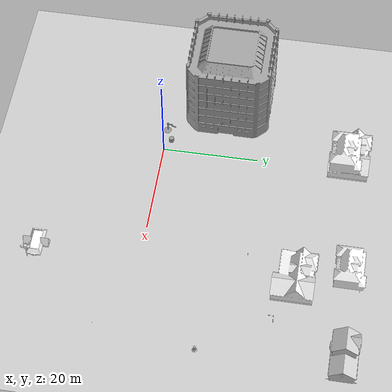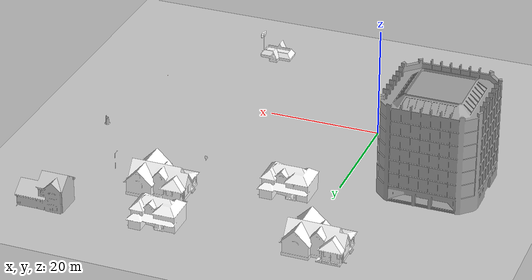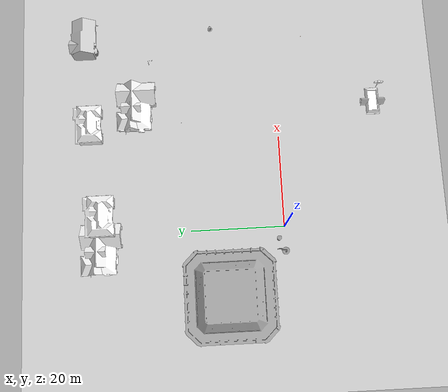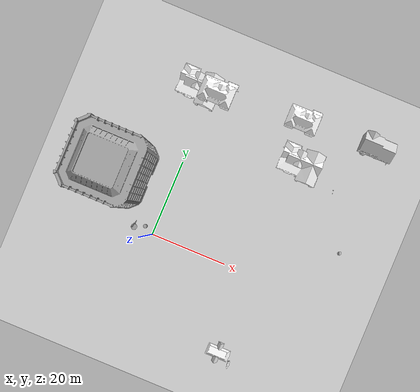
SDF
<sdf version="1.6">
 <world name="default">
  <light name="sun" type="directional">
   <pose>0 0 10 0 -0 0</pose>
   <diffuse>0.8 0.8 0.8 1</diffuse>
   <specular>0.1 0.1 0.1 1</specular>
   <attenuation>
    <range>1000</range>
    <constant>0.9</constant>
    <linear>0.01</linear>
    <quadratic>0.001</quadratic>
   </attenuation>
   <direction>-0.5 0.5 -1</direction>
  </light>
  <model name="ground_plane">
   <static>1</static>
   <link name="link">
    <collision name="collision">
     <geometry><plane><normal>0 0 1</normal><size>100 100</size></plane></geometry>
     <surface><friction><ode><mu>100</mu><mu2>50</mu2></ode></friction></surface>
    </collision>
    <visual name="visual">
     <cast_shadows>0</cast_shadows>
     <geometry><plane><normal>0 0 1</normal><size>100 100</size></plane></geometry>
     <material>
      <script><uri>file://media/materials/scripts/gazebo.material</uri><name>Gazebo/Grey</name></script>
     </material>
    </visual>
   </link>
  </model>
  <gravity>0 0 -9.8</gravity>
  <magnetic_field>6e-06 2.3e-05 -4.2e-05</magnetic_field>
  <atmosphere type="adiabatic"/>
  <physics name="default_physics" default="0" type="ode">
   <max_step_size>0.001</max_step_size>
   <real_time_factor>1</real_time_factor>
   <real_time_update_rate>1000</real_time_update_rate>
  </physics>
  <scene><ambient>0.4 0.4 0.4 1</ambient><background>0.7 0.7 0.7 1</background><shadows>1</shadows></scene>
  <spherical_coordinates>
   <surface_model>EARTH_WGS84</surface_model>
   <latitude_deg>0</latitude_deg>
   <longitude_deg>0</longitude_deg>
   <elevation>0</elevation>
   <heading_deg>0</heading_deg>
  </spherical_coordinates>
  <model name="unit_cylinder_0">
   <pose>-2.44814 1.27814 0.499994 -4e-06 -3e-06 -0</pose>
   <link name="link">
    <inertial>
     <mass>1</mass>
     <inertia><ixx>0.145833</ixx><ixy>0</ixy><ixz>0</ixz><iyy>0.145833</iyy><iyz>0</iyz><izz>0.125</izz></inertia>
    </inertial>
    <collision name="collision">
     <geometry><cylinder><radius>0.5</radius><length>1</length></cylinder></geometry>
    </collision>
    <visual name="visual">
     <geometry><cylinder><radius>0.5</radius><length>1</length></cylinder></geometry>
     <material>
      <script><name>Gazebo/Grey</name><uri>file://media/materials/scripts/gazebo.material</uri></script>
     </material>
    </visual>
   </link>
  </model>
  <model name="double_pendulum_with_base">
   <link name="base">
    <inertial>
     <mass>100</mass>
     <inertia><ixx>1</ixx><ixy>0</ixy><ixz>0</ixz><iyy>1</iyy><iyz>0</iyz><izz>1</izz></inertia>
    </inertial>
    <visual name="vis_plate_on_ground">
     <pose>0 0 0.01 0 -0 0</pose>
     <geometry><cylinder><radius>0.8</radius><length>0.02</length></cylinder></geometry>
     <material>
      <script><uri>file://media/materials/scripts/gazebo.material</uri><name>Gazebo/Grey</name></script>
     </material>
    </visual>
    <visual name="vis_pole">
     <pose>-0.275 0 1.1 0 -0 0</pose>
     <geometry><box><size>0.2 0.2 2.2</size></box></geometry>
     <material>
      <script><uri>file://media/materials/scripts/gazebo.material</uri><name>Gazebo/Grey</name></script>
     </material>
    </visual>
    <collision name="col_plate_on_ground">
     <pose>0 0 0.01 0 -0 0</pose>
     <geometry><cylinder><radius>0.8</radius><length>0.02</length></cylinder></geometry>
    </collision>
    <collision name="col_pole">
     <pose>-0.275 0 1.1 0 -0 0</pose>
     <geometry><box><size>0.2 0.2 2.2</size></box></geometry>
    </collision>
   </link>
   <link name="upper_link">
    <pose>0 0 2.1 -1.5708 0 0</pose>
    <inertial>
     <pose>0 0 0.5 0 -0 0</pose>
     <inertia><ixx>1</ixx><ixy>0</ixy><ixz>0</ixz><iyy>1</iyy><iyz>0</iyz><izz>1</izz></inertia>
     <mass>1</mass>
    </inertial>
    <visual name="vis_upper_joint">
     <pose>-0.05 0 0 3.14159 1.57079 3.14159</pose>
     <geometry><cylinder><radius>0.1</radius><length>0.3</length></cylinder></geometry>
     <material>
      <script><uri>file://media/materials/scripts/gazebo.material</uri><name>Gazebo/Grey</name></script>
     </material>
    </visual>
    <visual name="vis_lower_joint">
     <pose>0 0 1 3.14159 1.57079 3.14159</pose>
     <geometry><cylinder><radius>0.1</radius><length>0.2</length></cylinder></geometry>
     <material>
      <script><uri>file://media/materials/scripts/gazebo.material</uri><name>Gazebo/Grey</name></script>
     </material>
    </visual>
    <visual name="vis_cylinder">
     <pose>0 0 0.5 0 -0 0</pose>
     <geometry><cylinder><radius>0.1</radius><length>0.9</length></cylinder></geometry>
     <material>
      <script><uri>file://media/materials/scripts/gazebo.material</uri><name>Gazebo/Grey</name></script>
     </material>
    </visual>
    <collision name="col_upper_joint">
     <pose>-0.05 0 0 3.14159 1.57079 3.14159</pose>
     <geometry><cylinder><radius>0.1</radius><length>0.3</length></cylinder></geometry>
    </collision>
    <collision name="col_lower_joint">
     <pose>0 0 1 3.14159 1.57079 3.14159</pose>
     <geometry><cylinder><radius>0.1</radius><length>0.2</length></cylinder></geometry>
    </collision>
    <collision name="col_cylinder">
     <pose>0 0 0.5 0 -0 0</pose>
     <geometry><cylinder><radius>0.1</radius><length>0.9</length></cylinder></geometry>
    </collision>
   </link>
   <link name="lower_link">
    <pose>0.25 1 2.1 -2 0 0</pose>
    <inertial>
     <pose>0 0 0.5 0 -0 0</pose>
     <inertia><ixx>1</ixx><ixy>0</ixy><ixz>0</ixz><iyy>1</iyy><iyz>0</iyz><izz>1</izz></inertia>
     <mass>1</mass>
    </inertial>
    <visual name="vis_lower_joint">
     <pose>0 0 0 3.14159 1.57079 3.14159</pose>
     <geometry><cylinder><radius>0.08</radius><length>0.3</length></cylinder></geometry>
     <material>
      <script><uri>file://media/materials/scripts/gazebo.material</uri><name>Gazebo/Grey</name></script>
     </material>
    </visual>
    <visual name="vis_cylinder">
     <pose>0 0 0.5 0 -0 0</pose>
     <geometry><cylinder><radius>0.1</radius><length>0.9</length></cylinder></geometry>
     <material>
      <script><uri>file://media/materials/scripts/gazebo.material</uri><name>Gazebo/Grey</name></script>
     </material>
    </visual>
    <collision name="col_lower_joint">
     <pose>0 0 0 3.14159 1.57079 3.14159</pose>
     <geometry><cylinder><radius>0.08</radius><length>0.3</length></cylinder></geometry>
    </collision>
    <collision name="col_cylinder">
     <pose>0 0 0.5 0 -0 0</pose>
     <geometry><cylinder><radius>0.1</radius><length>0.9</length></cylinder></geometry>
    </collision>
   </link>
   <joint name="upper_joint" type="revolute">
    <parent>base</parent>
    <child>upper_link</child>
    <axis>
     <xyz>1 0 0</xyz>
     <use_parent_model_frame>1</use_parent_model_frame>
     <limit><lower>-1e+16</lower><upper>1e+16</upper></limit>
     <dynamics><spring_reference>0</spring_reference><spring_stiffness>0</spring_stiffness></dynamics>
    </axis>
   </joint>
   <joint name="lower_joint" type="revolute">
    <parent>upper_link</parent>
    <child>lower_link</child>
    <axis>
     <xyz>1 0 0</xyz>
     <use_parent_model_frame>1</use_parent_model_frame>
     <limit><lower>-1e+16</lower><upper>1e+16</upper></limit>
     <dynamics><spring_reference>0</spring_reference><spring_stiffness>0</spring_stiffness></dynamics>
    </axis>
   </joint>
   <pose>-5.16713 0.000517 -1e-06 -0 5e-06 -0.021644</pose>
  </model>
  <model name="Office Building">
   <static>1</static>
   <link name="link">
    <collision name="collision">
     <geometry>
      <mesh><uri>model://office_building/meshes/office_building.dae</uri><scale>1 1 1</scale></mesh>
     </geometry>
    </collision>
    <visual name="visual">
     <geometry>
      <mesh><uri>model://office_building/meshes/office_building.dae</uri><scale>1 1 1</scale></mesh>
     </geometry>
    </visual>
   </link>
   <pose>-14.6802 12.3677 0 0 -0 0</pose>
  </model>
  <model name="Construction Barrel">
   <static>1</static>
   <link name="link">
    <inertial>
     <pose>0 0 0.4 0 -0 0</pose>
     <mass>500</mass>
     <inertia><ixx>51.2096</ixx><iyy>51.2096</iyy><izz>25</izz><ixy>0</ixy><ixz>0</ixz><iyz>0</iyz></inertia>
    </inertial>
    <collision name="collision">
     <geometry>
      <mesh><uri>model://construction_barrel/meshes/construction_barrel.dae</uri><scale>1 1 1</scale></mesh>
     </geometry>
    </collision>
    <visual name="visual">
     <geometry>
      <mesh><uri>model://construction_barrel/meshes/construction_barrel.dae</uri><scale>1 1 1</scale></mesh>
     </geometry>
    </visual>
   </link>
   <pose>46.0084 13.9161 0 0 -0 0</pose>
  </model>
  <model name="Fast Food">
   <static>1</static>
   <link name="link">
    <collision name="collision">
     <geometry><mesh><uri>model://fast_food/meshes/fast_food.dae</uri><scale>1 1 1</scale></mesh></geometry>
    </collision>
    <visual name="visual">
     <geometry><mesh><uri>model://fast_food/meshes/fast_food.dae</uri><scale>1 1 1</scale></mesh></geometry>
     <material>
      <script>
       <uri>model://fast_food/materials/scripts</uri>
       <uri>model://fast_food/materials/textures</uri>
       <name>FastFood/Diffuse</name>
      </script>
     </material>
    </visual>
   </link>
   <pose>26.9774 -21.2928 0 0 -0 0</pose>
  </model>
  <model name="House 1">
   <static>1</static>
   <link name="link">
    <collision name="collision">
     <geometry><mesh><uri>model://house_1/meshes/house_1.dae</uri><scale>1 1 1</scale></mesh></geometry>
    </collision>
    <visual name="visual">
     <geometry><mesh><uri>model://house_1/meshes/house_1.dae</uri><scale>1 1 1</scale></mesh></geometry>
     <material>
      <script>
       <uri>model://house_1/materials/scripts</uri>
       <uri>model://house_1/materials/textures</uri>
       <name>House_1/Diffuse</name>
      </script>
      <shader type="normal_map_object_space"><normal_map>House_1_Normal.png</normal_map></shader>
     </material>
    </visual>
   </link>
   <pose>-3.01218 39.3259 0 0 -0 0</pose>
  </model>
  <model name="House 2">
   <static>1</static>
   <link name="link">
    <collision name="collision">
     <geometry><mesh><uri>model://house_2/meshes/house_2.dae</uri><scale>1 1 1</scale></mesh></geometry>
    </collision>
    <visual name="visual">
     <geometry><mesh><uri>model://house_2/meshes/house_2.dae</uri><scale>1 1 1</scale></mesh></geometry>
     <material>
      <script>
       <uri>model://house_2/materials/scripts</uri>
       <uri>model://house_2/materials/textures</uri>
       <name>House_2/Diffuse</name>
      </script>
     </material>
    </visual>
   </link>
   <pose>23.5473 41.1785 0 0 -0 0</pose>
  </model>
  <model name="House 3">
   <static>1</static>
   <link name="link">
    <collision name="collision">
     <geometry><mesh><uri>model://house_3/meshes/house_3.dae</uri><scale>1 1 1</scale></mesh></geometry>
    </collision>
    <visual name="visual">
     <geometry><mesh><uri>model://house_3/meshes/house_3.dae</uri><scale>1 1 1</scale></mesh></geometry>
     <material>
      <script>
       <uri>model://house_3/materials/scripts</uri>
       <uri>model://house_3/materials/textures</uri>
       <name>House_3/Diffuse</name>
      </script>
     </material>
    </visual>
   </link>
   <pose>44.5679 42.2201 0 0 -0 0</pose>
  </model>
  <model name="House 1_0">
   <static>1</static>
   <link name="link">
    <collision name="collision">
     <geometry><mesh><uri>model://house_1/meshes/house_1.dae</uri><scale>1 1 1</scale></mesh></geometry>
    </collision>
    <visual name="visual">
     <geometry><mesh><uri>model://house_1/meshes/house_1.dae</uri><scale>1 1 1</scale></mesh></geometry>
     <material>
      <script>
       <uri>model://house_1/materials/scripts</uri>
       <uri>model://house_1/materials/textures</uri>
       <name>House_1/Diffuse</name>
      </script>
      <shader type="normal_map_object_space"><normal_map>House_1_Normal.png</normal_map></shader>
     </material>
    </visual>
   </link>
   <pose>27.9961 31.1768 0 0 -0 0</pose>
  </model>
  <model name="Lamp Post">
   <static>1</static>
   <link name="link">
    <collision name="collision">
     <geometry><mesh><uri>model://lamp_post/meshes/lamp_post.dae</uri><scale>1 1 1</scale></mesh></geometry>
    </collision>
    <visual name="visual">
     <geometry><mesh><uri>model://lamp_post/meshes/lamp_post.dae</uri><scale>1 1 1</scale></mesh></geometry>
    </visual>
   </link>
   <pose>38.0071 27.9592 0 0 -0 0</pose>
  </model>
  <model name="wood_cube_7_5cm">
   <link name="link">
    <pose>0 0 0.0375 0 -0 0</pose>
    <inertial>
     <mass>0.2249</mass>
     <inertia>
      <ixx>0.000210844</ixx>
      <ixy>0</ixy>
      <ixz>0</ixz>
      <iyy>0.000210844</iyy>
      <iyz>0</iyz>
      <izz>0.000210844</izz>
     </inertia>
    </inertial>
    <collision name="collision">
     <geometry><box><size>0.075 0.075 0.075</size></box></geometry>
     <surface>
      <contact>
       <poissons_ratio>0.347</poissons_ratio>
       <elastic_modulus>8.8e+09</elastic_modulus>
       <ode><kp>100000</kp><kd>100</kd><max_vel>100</max_vel><min_depth>0.001</min_depth></ode>
      </contact>
      <friction>
       <torsional>
        <coefficient>1</coefficient>
        <use_patch_radius>0</use_patch_radius>
        <surface_radius>0.01</surface_radius>
       </torsional>
      </friction>
     </surface>
    </collision>
    <visual name="visual">
     <geometry><box><size>0.075 0.075 0.075</size></box></geometry>
     <material>
      <script><uri>file://media/materials/scripts/gazebo.material</uri><name>Gazebo/Wood</name></script>
     </material>
    </visual>
   </link>
   <pose>43.2062 -6.58881 -0.001005 0 -0 0</pose>
  </model>
  <light name="sun_0" type="directional">
   <pose>37.4498 5.86909 10 0 -0 0</pose>
   <diffuse>0.8 0.8 0.8 1</diffuse>
   <specular>0.1 0.1 0.1 1</specular>
   <attenuation>
    <range>1000</range>
    <constant>0.9</constant>
    <linear>0.01</linear>
    <quadratic>0.001</quadratic>
   </attenuation>
   <direction>-0.5 0.5 -1</direction>
  </light>
  <model name="Stop Sign">
   <link name="link">
    <collision name="collision">
     <geometry><mesh><uri>model://stop_sign/meshes/stop_sign.dae</uri><scale>1 1 1</scale></mesh></geometry>
    </collision>
    <visual name="visual">
     <geometry><mesh><uri>model://stop_sign/meshes/stop_sign.dae</uri><scale>1 1 1</scale></mesh></geometry>
     <material>
      <script>
       <uri>model://stop_sign/materials/scripts</uri>
       <uri>model://stop_sign/materials/textures</uri>
       <name>StopSign/Diffuse</name>
      </script>
     </material>
    </visual>
    <inertial>
     <inertia><ixx>1</ixx><ixy>0</ixy><ixz>0</ixz><iyy>1</iyy><iyz>0</iyz><izz>1</izz></inertia>
     <mass>1</mass>
    </inertial>
   </link>
   <pose>23.9915 21.1931 1e-06 6.6e-05 1.7e-05 -0</pose>
  </model>
  <model name="House 2_0">
   <static>1</static>
   <link name="link">
    <collision name="collision">
     <geometry><mesh><uri>model://house_2/meshes/house_2.dae</uri><scale>1 1 1</scale></mesh></geometry>
    </collision>
    <visual name="visual">
     <geometry><mesh><uri>model://house_2/meshes/house_2.dae</uri><scale>1 1 1</scale></mesh></geometry>
     <material>
      <script>
       <uri>model://house_2/materials/scripts</uri>
       <uri>model://house_2/materials/textures</uri>
       <name>House_2/Diffuse</name>
      </script>
     </material>
    </visual>
   </link>
   <pose>1.91011 37.5863 8.58793 0 -0 0</pose>
  </model>
 </world>
</sdf>
